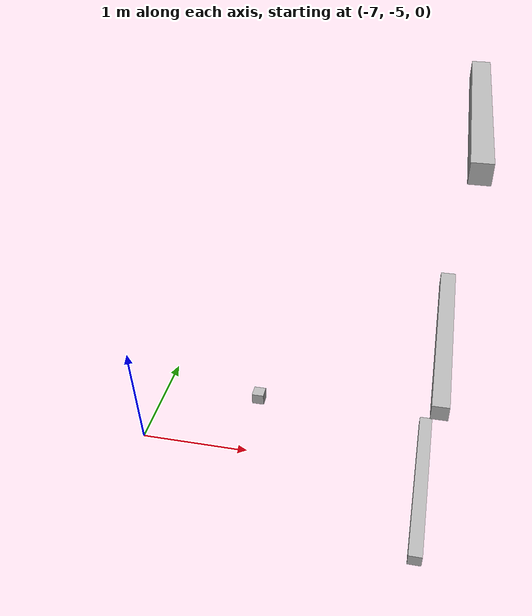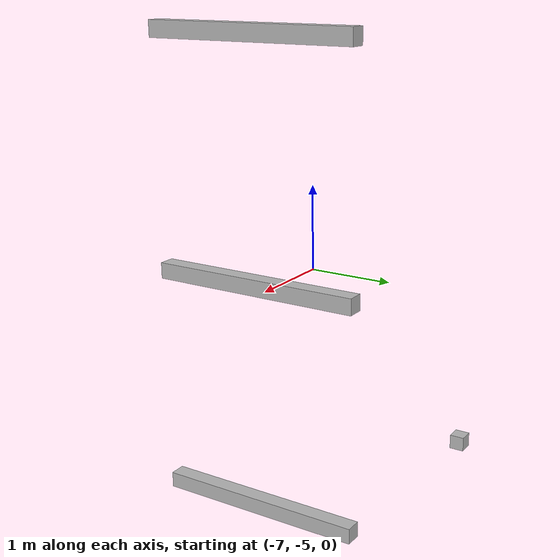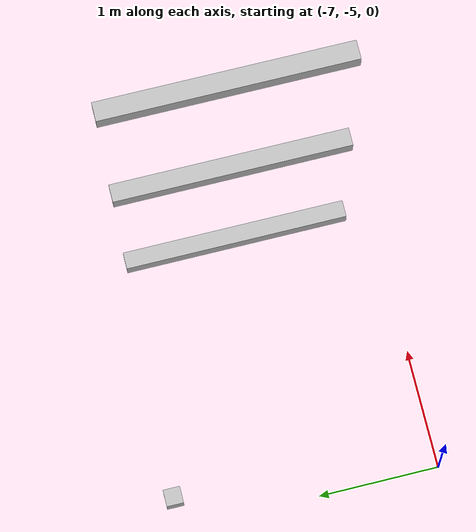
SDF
<sdf version="1.7">
 <world name="default">
  <model name="orthogonal_747_2.000.15_TS">
   <static>1</static>
   <link name="y_link_0_0_1">
    <inertial>
     <mass>1</mass>
     <inertia>
      <ixx>0.166667</ixx>
      <ixy>0</ixy>
      <ixz>0</ixz>
      <iyy>0.166667</iyy>
      <iyz>0</iyz>
      <izz>0.166667</izz>
     </inertia>
    </inertial>
    <pose>2.15 1.075 1.075 0 -0 0</pose>
    <visual name="visual_0">
     <laser_retro>29</laser_retro>
     <geometry><box><size>0.15 1e-06 0.15</size></box></geometry>
     <material>
      <script><name>Gazebo/Grey</name><uri>file://media/materials/scripts/gazebo.material</uri></script>
      <shader type="pixel"><normal_map>__default__</normal_map></shader>
      <ambient>0.678 0.498 0.659 1</ambient>
      <diffuse>0.7 0.7 0.7 1</diffuse>
      <specular>0.01 0.01 0.01 1</specular>
      <emissive>0 0 0 1</emissive>
     </material>
     <pose>0 -1 0 0 -0 0</pose>
     <transparency>1</transparency>
    </visual>
    <visual name="visual_1">
     <laser_retro>30</laser_retro>
     <geometry><box><size>0.15 1e-06 0.15</size></box></geometry>
     <material>
      <script><name>Gazebo/Grey</name><uri>file://media/materials/scripts/gazebo.material</uri></script>
      <shader type="pixel"><normal_map>__default__</normal_map></shader>
      <ambient>0.447 0.624 0.812 1</ambient>
      <diffuse>0.7 0.7 0.7 1</diffuse>
      <specular>0.01 0.01 0.01 1</specular>
      <emissive>0 0 0 1</emissive>
     </material>
     <pose>0 1 0 0 -0 0</pose>
     <transparency>1</transparency>
    </visual>
    <visual name="visual_2">
     <laser_retro>31</laser_retro>
     <geometry><box><size>0.15 2 1e-06</size></box></geometry>
     <material>
      <script><name>Gazebo/Grey</name><uri>file://media/materials/scripts/gazebo.material</uri></script>
      <shader type="pixel"><normal_map>__default__</normal_map></shader>
      <ambient>0.988 0.686 0.243 1</ambient>
      <diffuse>0.7 0.7 0.7 1</diffuse>
      <specular>0.01 0.01 0.01 1</specular>
      <emissive>0 0 0 1</emissive>
     </material>
     <pose>0 0 -0.075 0 -0 0</pose>
     <transparency>1</transparency>
    </visual>
    <visual name="visual_3">
     <laser_retro>32</laser_retro>
     <geometry><box><size>1e-06 2 0.15</size></box></geometry>
     <material>
      <script><name>Gazebo/Grey</name><uri>file://media/materials/scripts/gazebo.material</uri></script>
      <shader type="pixel"><normal_map>__default__</normal_map></shader>
      <ambient>0.988 0.914 0.31 1</ambient>
      <diffuse>0.7 0.7 0.7 1</diffuse>
      <specular>0.01 0.01 0.01 1</specular>
      <emissive>0 0 0 1</emissive>
     </material>
     <pose>0.075 0 0 0 -0 0</pose>
     <transparency>1</transparency>
    </visual>
    <visual name="visual_4">
     <laser_retro>33</laser_retro>
     <geometry><box><size>0.15 2 1e-06</size></box></geometry>
     <material>
      <script><name>Gazebo/Grey</name><uri>file://media/materials/scripts/gazebo.material</uri></script>
      <shader type="pixel"><normal_map>__default__</normal_map></shader>
      <ambient>0.937 0.161 0.161 1</ambient>
      <diffuse>0.7 0.7 0.7 1</diffuse>
      <specular>0.01 0.01 0.01 1</specular>
      <emissive>0 0 0 1</emissive>
     </material>
     <pose>0 0 0.075 0 -0 0</pose>
     <transparency>1</transparency>
    </visual>
    <visual name="visual_5">
     <laser_retro>34</laser_retro>
     <geometry><box><size>1e-06 2 0.15</size></box></geometry>
     <material>
      <script><name>Gazebo/Grey</name><uri>file://media/materials/scripts/gazebo.material</uri></script>
      <shader type="pixel"><normal_map>__default__</normal_map></shader>
      <ambient>0.541 0.886 0.204 1</ambient>
      <diffuse>0.7 0.7 0.7 1</diffuse>
      <specular>0.01 0.01 0.01 1</specular>
      <emissive>0 0 0 1</emissive>
     </material>
     <pose>-0.075 0 0 0 -0 0</pose>
     <transparency>1</transparency>
    </visual>
    <visual name="visual_texture">
     <geometry><box><size>0.149985 1.9998 0.149985</size></box></geometry>
     <material>
      <script>
       <uri>model://BASE_MODELS/simple_block_v2_textured/materials/scripts</uri>
       <uri>model://BASE_MODELS/simple_block_v2_textured/materials/textures</uri>
       <name>metal</name>
      </script>
     </material>
     <laser_retro>35</laser_retro>
    </visual>
    <collision name="collision">
     <geometry><box><size>0.15 2 0.15</size></box></geometry>
     <surface>
      <friction>
       <ode><mu>1</mu><mu2>1</mu2><fdir1>0 0 0</fdir1><slip1>0</slip1><slip2>0</slip2></ode>
       <torsional>
        <coefficient>1</coefficient>
        <patch_radius>0</patch_radius>
        <surface_radius>0</surface_radius>
        <use_patch_radius>1</use_patch_radius>
        <ode><slip>0</slip></ode>
       </torsional>
      </friction>
      <bounce><restitution_coefficient>0</restitution_coefficient><threshold>1e+06</threshold></bounce>
      <contact>
       <collide_without_contact>0</collide_without_contact>
       <collide_without_contact_bitmask>1</collide_without_contact_bitmask>
       <collide_bitmask>1</collide_bitmask>
       <ode>
        <soft_cfm>0</soft_cfm>
        <soft_erp>0.2</soft_erp>
        <kp>1e+13</kp>
        <kd>1</kd>
        <max_vel>0.01</max_vel>
        <min_depth>0</min_depth>
       </ode>
       <bullet>
        <split_impulse>1</split_impulse>
        <split_impulse_penetration_threshold>-0.01</split_impulse_penetration_threshold>
        <soft_cfm>0</soft_cfm>
        <soft_erp>0.2</soft_erp>
        <kp>1e+13</kp>
        <kd>1</kd>
       </bullet>
      </contact>
     </surface>
    </collision>
   </link>
   <link name="u_link_0_1_0">
    <inertial>
     <mass>1</mass>
     <inertia>
      <ixx>0.166667</ixx>
      <ixy>0</ixy>
      <ixz>0</ixz>
      <iyy>0.166667</iyy>
      <iyz>0</iyz>
      <izz>0.166667</izz>
     </inertia>
    </inertial>
    <pose>0 2.15 1.075 0 -0 0</pose>
    <visual name="visual_0">
     <laser_retro>176</laser_retro>
     <geometry><box><size>0.15 1e-06 0.15</size></box></geometry>
     <material>
      <script><name>Gazebo/Grey</name><uri>file://media/materials/scripts/gazebo.material</uri></script>
      <shader type="pixel"><normal_map>__default__</normal_map></shader>
      <ambient>0.678 0.498 0.659 1</ambient>
      <diffuse>0.7 0.7 0.7 1</diffuse>
      <specular>0.01 0.01 0.01 1</specular>
      <emissive>0 0 0 1</emissive>
     </material>
     <pose>0 -0.075 0 0 -0 0</pose>
     <transparency>1</transparency>
    </visual>
    <visual name="visual_1">
     <laser_retro>177</laser_retro>
     <geometry><box><size>0.15 1e-06 0.15</size></box></geometry>
     <material>
      <script><name>Gazebo/Grey</name><uri>file://media/materials/scripts/gazebo.material</uri></script>
      <shader type="pixel"><normal_map>__default__</normal_map></shader>
      <ambient>0.447 0.624 0.812 1</ambient>
      <diffuse>0.7 0.7 0.7 1</diffuse>
      <specular>0.01 0.01 0.01 1</specular>
      <emissive>0 0 0 1</emissive>
     </material>
     <pose>0 0.075 0 0 -0 0</pose>
     <transparency>1</transparency>
    </visual>
    <visual name="visual_2">
     <laser_retro>178</laser_retro>
     <geometry><box><size>0.15 0.15 1e-06</size></box></geometry>
     <material>
      <script><name>Gazebo/Grey</name><uri>file://media/materials/scripts/gazebo.material</uri></script>
      <shader type="pixel"><normal_map>__default__</normal_map></shader>
      <ambient>0.988 0.686 0.243 1</ambient>
      <diffuse>0.7 0.7 0.7 1</diffuse>
      <specular>0.01 0.01 0.01 1</specular>
      <emissive>0 0 0 1</emissive>
     </material>
     <pose>0 0 -0.075 0 -0 0</pose>
     <transparency>1</transparency>
    </visual>
    <visual name="visual_3">
     <laser_retro>179</laser_retro>
     <geometry><box><size>1e-06 0.15 0.15</size></box></geometry>
     <material>
      <script><name>Gazebo/Grey</name><uri>file://media/materials/scripts/gazebo.material</uri></script>
      <shader type="pixel"><normal_map>__default__</normal_map></shader>
      <ambient>0.988 0.914 0.31 1</ambient>
      <diffuse>0.7 0.7 0.7 1</diffuse>
      <specular>0.01 0.01 0.01 1</specular>
      <emissive>0 0 0 1</emissive>
     </material>
     <pose>0.075 0 0 0 -0 0</pose>
     <transparency>1</transparency>
    </visual>
    <visual name="visual_4">
     <laser_retro>180</laser_retro>
     <geometry><box><size>0.15 0.15 1e-06</size></box></geometry>
     <material>
      <script><name>Gazebo/Grey</name><uri>file://media/materials/scripts/gazebo.material</uri></script>
      <shader type="pixel"><normal_map>__default__</normal_map></shader>
      <ambient>0.937 0.161 0.161 1</ambient>
      <diffuse>0.7 0.7 0.7 1</diffuse>
      <specular>0.01 0.01 0.01 1</specular>
      <emissive>0 0 0 1</emissive>
     </material>
     <pose>0 0 0.075 0 -0 0</pose>
     <transparency>1</transparency>
    </visual>
    <visual name="visual_5">
     <laser_retro>181</laser_retro>
     <geometry><box><size>1e-06 0.15 0.15</size></box></geometry>
     <material>
      <script><name>Gazebo/Grey</name><uri>file://media/materials/scripts/gazebo.material</uri></script>
      <shader type="pixel"><normal_map>__default__</normal_map></shader>
      <ambient>0.541 0.886 0.204 1</ambient>
      <diffuse>0.7 0.7 0.7 1</diffuse>
      <specular>0.01 0.01 0.01 1</specular>
      <emissive>0 0 0 1</emissive>
     </material>
     <pose>-0.075 0 0 0 -0 0</pose>
     <transparency>1</transparency>
    </visual>
    <visual name="visual_texture">
     <geometry><box><size>0.149985 0.149985 0.149985</size></box></geometry>
     <material>
      <script>
       <uri>model://BASE_MODELS/simple_block_v2_textured/materials/scripts</uri>
       <uri>model://BASE_MODELS/simple_block_v2_textured/materials/textures</uri>
       <name>metal</name>
      </script>
     </material>
     <laser_retro>182</laser_retro>
    </visual>
    <collision name="collision">
     <geometry><box><size>0.15 0.15 0.15</size></box></geometry>
     <surface>
      <friction>
       <ode><mu>1</mu><mu2>1</mu2><fdir1>0 0 0</fdir1><slip1>0</slip1><slip2>0</slip2></ode>
       <torsional>
        <coefficient>1</coefficient>
        <patch_radius>0</patch_radius>
        <surface_radius>0</surface_radius>
        <use_patch_radius>1</use_patch_radius>
        <ode><slip>0</slip></ode>
       </torsional>
      </friction>
      <bounce><restitution_coefficient>0</restitution_coefficient><threshold>1e+06</threshold></bounce>
      <contact>
       <collide_without_contact>0</collide_without_contact>
       <collide_without_contact_bitmask>1</collide_without_contact_bitmask>
       <collide_bitmask>1</collide_bitmask>
       <ode>
        <soft_cfm>0</soft_cfm>
        <soft_erp>0.2</soft_erp>
        <kp>1e+13</kp>
        <kd>1</kd>
        <max_vel>0.01</max_vel>
        <min_depth>0</min_depth>
       </ode>
       <bullet>
        <split_impulse>1</split_impulse>
        <split_impulse_penetration_threshold>-0.01</split_impulse_penetration_threshold>
        <soft_cfm>0</soft_cfm>
        <soft_erp>0.2</soft_erp>
        <kp>1e+13</kp>
        <kd>1</kd>
       </bullet>
      </contact>
     </surface>
    </collision>
   </link>
   <link name="y_link_1_0_1">
    <inertial>
     <mass>1</mass>
     <inertia>
      <ixx>0.166667</ixx>
      <ixy>0</ixy>
      <ixz>0</ixz>
      <iyy>0.166667</iyy>
      <iyz>0</iyz>
      <izz>0.166667</izz>
     </inertia>
    </inertial>
    <pose>2.15 1.075 3.225 0 -0 0</pose>
    <visual name="visual_0">
     <laser_retro>785</laser_retro>
     <geometry><box><size>0.15 1e-06 0.15</size></box></geometry>
     <material>
      <script><name>Gazebo/Grey</name><uri>file://media/materials/scripts/gazebo.material</uri></script>
      <shader type="pixel"><normal_map>__default__</normal_map></shader>
      <ambient>0.678 0.498 0.659 1</ambient>
      <diffuse>0.7 0.7 0.7 1</diffuse>
      <specular>0.01 0.01 0.01 1</specular>
      <emissive>0 0 0 1</emissive>
     </material>
     <pose>0 -1 0 0 -0 0</pose>
     <transparency>1</transparency>
    </visual>
    <visual name="visual_1">
     <laser_retro>786</laser_retro>
     <geometry><box><size>0.15 1e-06 0.15</size></box></geometry>
     <material>
      <script><name>Gazebo/Grey</name><uri>file://media/materials/scripts/gazebo.material</uri></script>
      <shader type="pixel"><normal_map>__default__</normal_map></shader>
      <ambient>0.447 0.624 0.812 1</ambient>
      <diffuse>0.7 0.7 0.7 1</diffuse>
      <specular>0.01 0.01 0.01 1</specular>
      <emissive>0 0 0 1</emissive>
     </material>
     <pose>0 1 0 0 -0 0</pose>
     <transparency>1</transparency>
    </visual>
    <visual name="visual_2">
     <laser_retro>787</laser_retro>
     <geometry><box><size>0.15 2 1e-06</size></box></geometry>
     <material>
      <script><name>Gazebo/Grey</name><uri>file://media/materials/scripts/gazebo.material</uri></script>
      <shader type="pixel"><normal_map>__default__</normal_map></shader>
      <ambient>0.988 0.686 0.243 1</ambient>
      <diffuse>0.7 0.7 0.7 1</diffuse>
      <specular>0.01 0.01 0.01 1</specular>
      <emissive>0 0 0 1</emissive>
     </material>
     <pose>0 0 -0.075 0 -0 0</pose>
     <transparency>1</transparency>
    </visual>
    <visual name="visual_3">
     <laser_retro>788</laser_retro>
     <geometry><box><size>1e-06 2 0.15</size></box></geometry>
     <material>
      <script><name>Gazebo/Grey</name><uri>file://media/materials/scripts/gazebo.material</uri></script>
      <shader type="pixel"><normal_map>__default__</normal_map></shader>
      <ambient>0.988 0.914 0.31 1</ambient>
      <diffuse>0.7 0.7 0.7 1</diffuse>
      <specular>0.01 0.01 0.01 1</specular>
      <emissive>0 0 0 1</emissive>
     </material>
     <pose>0.075 0 0 0 -0 0</pose>
     <transparency>1</transparency>
    </visual>
    <visual name="visual_4">
     <laser_retro>789</laser_retro>
     <geometry><box><size>0.15 2 1e-06</size></box></geometry>
     <material>
      <script><name>Gazebo/Grey</name><uri>file://media/materials/scripts/gazebo.material</uri></script>
      <shader type="pixel"><normal_map>__default__</normal_map></shader>
      <ambient>0.937 0.161 0.161 1</ambient>
      <diffuse>0.7 0.7 0.7 1</diffuse>
      <specular>0.01 0.01 0.01 1</specular>
      <emissive>0 0 0 1</emissive>
     </material>
     <pose>0 0 0.075 0 -0 0</pose>
     <transparency>1</transparency>
    </visual>
    <visual name="visual_5">
     <laser_retro>790</laser_retro>
     <geometry><box><size>1e-06 2 0.15</size></box></geometry>
     <material>
      <script><name>Gazebo/Grey</name><uri>file://media/materials/scripts/gazebo.material</uri></script>
      <shader type="pixel"><normal_map>__default__</normal_map></shader>
      <ambient>0.541 0.886 0.204 1</ambient>
      <diffuse>0.7 0.7 0.7 1</diffuse>
      <specular>0.01 0.01 0.01 1</specular>
      <emissive>0 0 0 1</emissive>
     </material>
     <pose>-0.075 0 0 0 -0 0</pose>
     <transparency>1</transparency>
    </visual>
    <visual name="visual_texture">
     <geometry><box><size>0.149985 1.9998 0.149985</size></box></geometry>
     <material>
      <script>
       <uri>model://BASE_MODELS/simple_block_v2_textured/materials/scripts</uri>
       <uri>model://BASE_MODELS/simple_block_v2_textured/materials/textures</uri>
       <name>metal</name>
      </script>
     </material>
     <laser_retro>791</laser_retro>
    </visual>
    <collision name="collision">
     <geometry><box><size>0.15 2 0.15</size></box></geometry>
     <surface>
      <friction>
       <ode><mu>1</mu><mu2>1</mu2><fdir1>0 0 0</fdir1><slip1>0</slip1><slip2>0</slip2></ode>
       <torsional>
        <coefficient>1</coefficient>
        <patch_radius>0</patch_radius>
        <surface_radius>0</surface_radius>
        <use_patch_radius>1</use_patch_radius>
        <ode><slip>0</slip></ode>
       </torsional>
      </friction>
      <bounce><restitution_coefficient>0</restitution_coefficient><threshold>1e+06</threshold></bounce>
      <contact>
       <collide_without_contact>0</collide_without_contact>
       <collide_without_contact_bitmask>1</collide_without_contact_bitmask>
       <collide_bitmask>1</collide_bitmask>
       <ode>
        <soft_cfm>0</soft_cfm>
        <soft_erp>0.2</soft_erp>
        <kp>1e+13</kp>
        <kd>1</kd>
        <max_vel>0.01</max_vel>
        <min_depth>0</min_depth>
       </ode>
       <bullet>
        <split_impulse>1</split_impulse>
        <split_impulse_penetration_threshold>-0.01</split_impulse_penetration_threshold>
        <soft_cfm>0</soft_cfm>
        <soft_erp>0.2</soft_erp>
        <kp>1e+13</kp>
        <kd>1</kd>
       </bullet>
      </contact>
     </surface>
    </collision>
   </link>
   <link name="y_link_2_0_1">
    <inertial>
     <mass>1</mass>
     <inertia>
      <ixx>0.166667</ixx>
      <ixy>0</ixy>
      <ixz>0</ixz>
      <iyy>0.166667</iyy>
      <iyz>0</iyz>
      <izz>0.166667</izz>
     </inertia>
    </inertial>
    <pose>2.15 1.075 5.375 0 -0 0</pose>
    <visual name="visual_0">
     <laser_retro>1688</laser_retro>
     <geometry><box><size>0.15 1e-06 0.15</size></box></geometry>
     <material>
      <script><name>Gazebo/Grey</name><uri>file://media/materials/scripts/gazebo.material</uri></script>
      <shader type="pixel"><normal_map>__default__</normal_map></shader>
      <ambient>0.678 0.498 0.659 1</ambient>
      <diffuse>0.7 0.7 0.7 1</diffuse>
      <specular>0.01 0.01 0.01 1</specular>
      <emissive>0 0 0 1</emissive>
     </material>
     <pose>0 -1 0 0 -0 0</pose>
     <transparency>1</transparency>
    </visual>
    <visual name="visual_1">
     <laser_retro>1689</laser_retro>
     <geometry><box><size>0.15 1e-06 0.15</size></box></geometry>
     <material>
      <script><name>Gazebo/Grey</name><uri>file://media/materials/scripts/gazebo.material</uri></script>
      <shader type="pixel"><normal_map>__default__</normal_map></shader>
      <ambient>0.447 0.624 0.812 1</ambient>
      <diffuse>0.7 0.7 0.7 1</diffuse>
      <specular>0.01 0.01 0.01 1</specular>
      <emissive>0 0 0 1</emissive>
     </material>
     <pose>0 1 0 0 -0 0</pose>
     <transparency>1</transparency>
    </visual>
    <visual name="visual_2">
     <laser_retro>1690</laser_retro>
     <geometry><box><size>0.15 2 1e-06</size></box></geometry>
     <material>
      <script><name>Gazebo/Grey</name><uri>file://media/materials/scripts/gazebo.material</uri></script>
      <shader type="pixel"><normal_map>__default__</normal_map></shader>
      <ambient>0.988 0.686 0.243 1</ambient>
      <diffuse>0.7 0.7 0.7 1</diffuse>
      <specular>0.01 0.01 0.01 1</specular>
      <emissive>0 0 0 1</emissive>
     </material>
     <pose>0 0 -0.075 0 -0 0</pose>
     <transparency>1</transparency>
    </visual>
    <visual name="visual_3">
     <laser_retro>1691</laser_retro>
     <geometry><box><size>1e-06 2 0.15</size></box></geometry>
     <material>
      <script><name>Gazebo/Grey</name><uri>file://media/materials/scripts/gazebo.material</uri></script>
      <shader type="pixel"><normal_map>__default__</normal_map></shader>
      <ambient>0.988 0.914 0.31 1</ambient>
      <diffuse>0.7 0.7 0.7 1</diffuse>
      <specular>0.01 0.01 0.01 1</specular>
      <emissive>0 0 0 1</emissive>
     </material>
     <pose>0.075 0 0 0 -0 0</pose>
     <transparency>1</transparency>
    </visual>
    <visual name="visual_4">
     <laser_retro>1692</laser_retro>
     <geometry><box><size>0.15 2 1e-06</size></box></geometry>
     <material>
      <script><name>Gazebo/Grey</name><uri>file://media/materials/scripts/gazebo.material</uri></script>
      <shader type="pixel"><normal_map>__default__</normal_map></shader>
      <ambient>0.937 0.161 0.161 1</ambient>
      <diffuse>0.7 0.7 0.7 1</diffuse>
      <specular>0.01 0.01 0.01 1</specular>
      <emissive>0 0 0 1</emissive>
     </material>
     <pose>0 0 0.075 0 -0 0</pose>
     <transparency>1</transparency>
    </visual>
    <visual name="visual_5">
     <laser_retro>1693</laser_retro>
     <geometry><box><size>1e-06 2 0.15</size></box></geometry>
     <material>
      <script><name>Gazebo/Grey</name><uri>file://media/materials/scripts/gazebo.material</uri></script>
      <shader type="pixel"><normal_map>__default__</normal_map></shader>
      <ambient>0.541 0.886 0.204 1</ambient>
      <diffuse>0.7 0.7 0.7 1</diffuse>
      <specular>0.01 0.01 0.01 1</specular>
      <emissive>0 0 0 1</emissive>
     </material>
     <pose>-0.075 0 0 0 -0 0</pose>
     <transparency>1</transparency>
    </visual>
    <visual name="visual_texture">
     <geometry><box><size>0.149985 1.9998 0.149985</size></box></geometry>
     <material>
      <script>
       <uri>model://BASE_MODELS/simple_block_v2_textured/materials/scripts</uri>
       <uri>model://BASE_MODELS/simple_block_v2_textured/materials/textures</uri>
       <name>metal</name>
      </script>
     </material>
     <laser_retro>1694</laser_retro>
    </visual>
    <collision name="collision">
     <geometry><box><size>0.15 2 0.15</size></box></geometry>
     <surface>
      <friction>
       <ode><mu>1</mu><mu2>1</mu2><fdir1>0 0 0</fdir1><slip1>0</slip1><slip2>0</slip2></ode>
       <torsional>
        <coefficient>1</coefficient>
        <patch_radius>0</patch_radius>
        <surface_radius>0</surface_radius>
        <use_patch_radius>1</use_patch_radius>
        <ode><slip>0</slip></ode>
       </torsional>
      </friction>
      <bounce><restitution_coefficient>0</restitution_coefficient><threshold>1e+06</threshold></bounce>
      <contact>
       <collide_without_contact>0</collide_without_contact>
       <collide_without_contact_bitmask>1</collide_without_contact_bitmask>
       <collide_bitmask>1</collide_bitmask>
       <ode>
        <soft_cfm>0</soft_cfm>
        <soft_erp>0.2</soft_erp>
        <kp>1e+13</kp>
        <kd>1</kd>
        <max_vel>0.01</max_vel>
        <min_depth>0</min_depth>
       </ode>
       <bullet>
        <split_impulse>1</split_impulse>
        <split_impulse_penetration_threshold>-0.01</split_impulse_penetration_threshold>
        <soft_cfm>0</soft_cfm>
        <soft_erp>0.2</soft_erp>
        <kp>1e+13</kp>
        <kd>1</kd>
       </bullet>
      </contact>
     </surface>
    </collision>
   </link>
   <pose>-6.47624 -5 -2.5 0 -0 0</pose>
  </model>
 </world>
</sdf>
